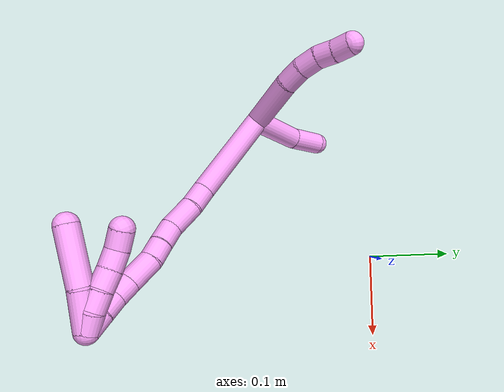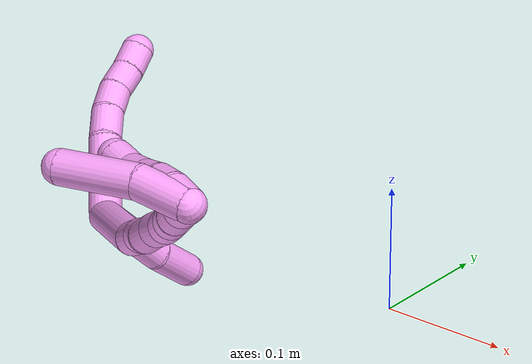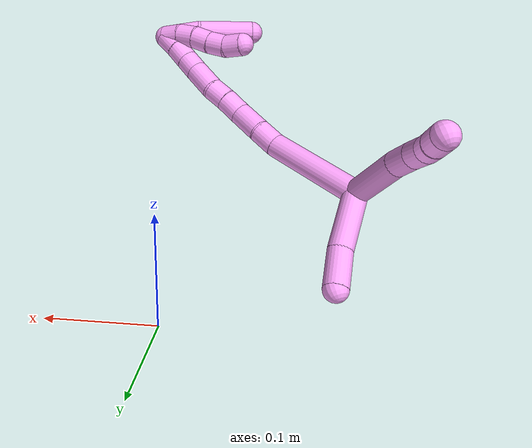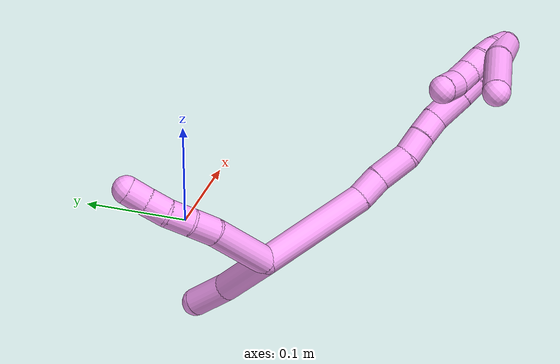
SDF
<sdf version="1.7">
 <world name="default">
  <model name="4">
   <static>0</static>
   <link name="4">
    <collision name="collision-cylinder-e_1_2_8">
     <pose>-0.026181 0.01748 -0.002011 -1.68532 -0.979069 1.07729</pose>
     <geometry><cylinder><radius>0.0125</radius><length>0.063088</length></cylinder></geometry>
     <surface>
      <friction><ode><mu>1.16</mu><mu2>1.16</mu2><slip1>0</slip1><slip2>0</slip2></ode></friction>
      <contact><ode><kp>1e+06</kp><kd>1</kd><max_vel>0</max_vel><min_depth>0.001</min_depth></ode></contact>
     </surface>
    </collision>
    <visual name="visual-cylinder-e_1_2_8">
     <pose>-0.026181 0.01748 -0.002011 -1.68532 -0.979069 1.07729</pose>
     <geometry><cylinder><radius>0.0125</radius><length>0.063088</length></cylinder></geometry>
     <material><ambient>1 0.65098 0.996078 1</ambient></material>
    </visual>
    <collision name="collision-cylinder-e_2_8_9">
     <pose>-0.062023 0.042205 -0.006603 -1.91309 -0.898423 1.1992</pose>
     <geometry><cylinder><radius>0.0125</radius><length>0.0247</length></cylinder></geometry>
     <surface>
      <friction><ode><mu>1.16</mu><mu2>1.16</mu2><slip1>0</slip1><slip2>0</slip2></ode></friction>
      <contact><ode><kp>1e+06</kp><kd>1</kd><max_vel>0</max_vel><min_depth>0.001</min_depth></ode></contact>
     </surface>
    </collision>
    <visual name="visual-cylinder-e_2_8_9">
     <pose>-0.062023 0.042205 -0.006603 -1.91309 -0.898423 1.1992</pose>
     <geometry><cylinder><radius>0.0125</radius><length>0.0247</length></cylinder></geometry>
     <material><ambient>1 0.65098 0.996078 1</ambient></material>
    </visual>
    <collision name="collision-cylinder-e_3_9_10">
     <pose>-0.078942 0.057204 -0.012435 -1.96778 -0.712116 1.01974</pose>
     <geometry><cylinder><radius>0.0125</radius><length>0.022212</length></cylinder></geometry>
     <surface>
      <friction><ode><mu>1.16</mu><mu2>1.16</mu2><slip1>0</slip1><slip2>0</slip2></ode></friction>
      <contact><ode><kp>1e+06</kp><kd>1</kd><max_vel>0</max_vel><min_depth>0.001</min_depth></ode></contact>
     </surface>
    </collision>
    <visual name="visual-cylinder-e_3_9_10">
     <pose>-0.078942 0.057204 -0.012435 -1.96778 -0.712116 1.01974</pose>
     <geometry><cylinder><radius>0.0125</radius><length>0.022212</length></cylinder></geometry>
     <material><ambient>1 0.65098 0.996078 1</ambient></material>
    </visual>
    <collision name="collision-cylinder-e_4_10_11">
     <pose>-0.090768 0.073499 -0.01817 -1.85382 -0.474482 0.623272</pose>
     <geometry><cylinder><radius>0.0125</radius><length>0.02</length></cylinder></geometry>
     <surface>
      <friction><ode><mu>1.16</mu><mu2>1.16</mu2><slip1>0</slip1><slip2>0</slip2></ode></friction>
      <contact><ode><kp>1e+06</kp><kd>1</kd><max_vel>0</max_vel><min_depth>0.001</min_depth></ode></contact>
     </surface>
    </collision>
    <visual name="visual-cylinder-e_4_10_11">
     <pose>-0.090768 0.073499 -0.01817 -1.85382 -0.474482 0.623272</pose>
     <geometry><cylinder><radius>0.0125</radius><length>0.02</length></cylinder></geometry>
     <material><ambient>1 0.65098 0.996078 1</ambient></material>
    </visual>
    <collision name="collision-cylinder-e_5_11_6">
     <pose>-0.100836 0.090176 -0.022544 -1.79909 -0.582234 0.721446</pose>
     <geometry><cylinder><radius>0.0125</radius><length>0.020001</length></cylinder></geometry>
     <surface>
      <friction><ode><mu>1.16</mu><mu2>1.16</mu2><slip1>0</slip1><slip2>0</slip2></ode></friction>
      <contact><ode><kp>1e+06</kp><kd>1</kd><max_vel>0</max_vel><min_depth>0.001</min_depth></ode></contact>
     </surface>
    </collision>
    <visual name="visual-cylinder-e_5_11_6">
     <pose>-0.100836 0.090176 -0.022544 -1.79909 -0.582234 0.721446</pose>
     <geometry><cylinder><radius>0.0125</radius><length>0.020001</length></cylinder></geometry>
     <material><ambient>1 0.65098 0.996078 1</ambient></material>
    </visual>
    <collision name="collision-cylinder-e_1_2_12">
     <pose>0.014461 0.008409 -0.02551 -2.82319 0.493892 -2.00734</pose>
     <geometry><cylinder><radius>0.0125</radius><length>0.061011</length></cylinder></geometry>
     <surface>
      <friction><ode><mu>1.16</mu><mu2>1.16</mu2><slip1>0</slip1><slip2>0</slip2></ode></friction>
      <contact><ode><kp>1e+06</kp><kd>1</kd><max_vel>0</max_vel><min_depth>0.001</min_depth></ode></contact>
     </surface>
    </collision>
    <visual name="visual-cylinder-e_1_2_12">
     <pose>0.014461 0.008409 -0.02551 -2.82319 0.493892 -2.00734</pose>
     <geometry><cylinder><radius>0.0125</radius><length>0.061011</length></cylinder></geometry>
     <material><ambient>1 0.65098 0.996078 1</ambient></material>
    </visual>
    <collision name="collision-cylinder-e_2_12_5">
     <pose>0.034865 0.023535 -0.068329 -2.7714 0.309765 -1.39011</pose>
     <geometry><cylinder><radius>0.0125</radius><length>0.038989</length></cylinder></geometry>
     <surface>
      <friction><ode><mu>1.16</mu><mu2>1.16</mu2><slip1>0</slip1><slip2>0</slip2></ode></friction>
      <contact><ode><kp>1e+06</kp><kd>1</kd><max_vel>0</max_vel><min_depth>0.001</min_depth></ode></contact>
     </surface>
    </collision>
    <visual name="visual-cylinder-e_2_12_5">
     <pose>0.034865 0.023535 -0.068329 -2.7714 0.309765 -1.39011</pose>
     <geometry><cylinder><radius>0.0125</radius><length>0.038989</length></cylinder></geometry>
     <material><ambient>1 0.65098 0.996078 1</ambient></material>
    </visual>
    <collision name="collision-cylinder-e_1_2_13">
     <pose>0.030687 6e-05 0.042796 -0.001407 0.622083 -0.000452</pose>
     <geometry><cylinder><radius>0.0125</radius><length>0.105322</length></cylinder></geometry>
     <surface>
      <friction><ode><mu>1.16</mu><mu2>1.16</mu2><slip1>0</slip1><slip2>0</slip2></ode></friction>
      <contact><ode><kp>1e+06</kp><kd>1</kd><max_vel>0</max_vel><min_depth>0.001</min_depth></ode></contact>
     </surface>
    </collision>
    <visual name="visual-cylinder-e_1_2_13">
     <pose>0.030687 6e-05 0.042796 -0.001407 0.622083 -0.000452</pose>
     <geometry><cylinder><radius>0.0125</radius><length>0.105322</length></cylinder></geometry>
     <material><ambient>1 0.65098 0.996078 1</ambient></material>
    </visual>
    <collision name="collision-cylinder-e_2_13_14">
     <pose>0.066612 0.002312 0.09652 -0.197953 0.439331 -0.044334</pose>
     <geometry><cylinder><radius>0.0125</radius><length>0.024632</length></cylinder></geometry>
     <surface>
      <friction><ode><mu>1.16</mu><mu2>1.16</mu2><slip1>0</slip1><slip2>0</slip2></ode></friction>
      <contact><ode><kp>1e+06</kp><kd>1</kd><max_vel>0</max_vel><min_depth>0.001</min_depth></ode></contact>
     </surface>
    </collision>
    <visual name="visual-cylinder-e_2_13_14">
     <pose>0.066612 0.002312 0.09652 -0.197953 0.439331 -0.044334</pose>
     <geometry><cylinder><radius>0.0125</radius><length>0.024632</length></cylinder></geometry>
     <material><ambient>1 0.65098 0.996078 1</ambient></material>
    </visual>
    <collision name="collision-cylinder-e_3_14_15">
     <pose>0.079089 0.004724 0.122389 -0.014667 0.45112 -0.003366</pose>
     <geometry><cylinder><radius>0.0125</radius><length>0.033207</length></cylinder></geometry>
     <surface>
      <friction><ode><mu>1.16</mu><mu2>1.16</mu2><slip1>0</slip1><slip2>0</slip2></ode></friction>
      <contact><ode><kp>1e+06</kp><kd>1</kd><max_vel>0</max_vel><min_depth>0.001</min_depth></ode></contact>
     </surface>
    </collision>
    <visual name="visual-cylinder-e_3_14_15">
     <pose>0.079089 0.004724 0.122389 -0.014667 0.45112 -0.003366</pose>
     <geometry><cylinder><radius>0.0125</radius><length>0.033207</length></cylinder></geometry>
     <material><ambient>1 0.65098 0.996078 1</ambient></material>
    </visual>
    <collision name="collision-cylinder-e_4_15_16">
     <pose>0.090585 0.008348 0.147484 -0.323586 0.378349 -0.062481</pose>
     <geometry><cylinder><radius>0.0125</radius><length>0.02305</length></cylinder></geometry>
     <surface>
      <friction><ode><mu>1.16</mu><mu2>1.16</mu2><slip1>0</slip1><slip2>0</slip2></ode></friction>
      <contact><ode><kp>1e+06</kp><kd>1</kd><max_vel>0</max_vel><min_depth>0.001</min_depth></ode></contact>
     </surface>
    </collision>
    <visual name="visual-cylinder-e_4_15_16">
     <pose>0.090585 0.008348 0.147484 -0.323586 0.378349 -0.062481</pose>
     <geometry><cylinder><radius>0.0125</radius><length>0.02305</length></cylinder></geometry>
     <material><ambient>1 0.65098 0.996078 1</ambient></material>
    </visual>
    <collision name="collision-cylinder-e_5_16_17">
     <pose>0.099386 0.014533 0.166425 -0.306294 0.458051 -0.071935</pose>
     <geometry><cylinder><radius>0.0125</radius><length>0.02055</length></cylinder></geometry>
     <surface>
      <friction><ode><mu>1.16</mu><mu2>1.16</mu2><slip1>0</slip1><slip2>0</slip2></ode></friction>
      <contact><ode><kp>1e+06</kp><kd>1</kd><max_vel>0</max_vel><min_depth>0.001</min_depth></ode></contact>
     </surface>
    </collision>
    <visual name="visual-cylinder-e_5_16_17">
     <pose>0.099386 0.014533 0.166425 -0.306294 0.458051 -0.071935</pose>
     <geometry><cylinder><radius>0.0125</radius><length>0.02055</length></cylinder></geometry>
     <material><ambient>1 0.65098 0.996078 1</ambient></material>
    </visual>
    <collision name="collision-cylinder-e_6_17_18">
     <pose>0.109538 0.018447 0.190054 -0.076386 0.360343 -0.01392</pose>
     <geometry><cylinder><radius>0.0125</radius><length>0.031814</length></cylinder></geometry>
     <surface>
      <friction><ode><mu>1.16</mu><mu2>1.16</mu2><slip1>0</slip1><slip2>0</slip2></ode></friction>
      <contact><ode><kp>1e+06</kp><kd>1</kd><max_vel>0</max_vel><min_depth>0.001</min_depth></ode></contact>
     </surface>
    </collision>
    <visual name="visual-cylinder-e_6_17_18">
     <pose>0.109538 0.018447 0.190054 -0.076386 0.360343 -0.01392</pose>
     <geometry><cylinder><radius>0.0125</radius><length>0.031814</length></cylinder></geometry>
     <material><ambient>1 0.65098 0.996078 1</ambient></material>
    </visual>
    <collision name="collision-cylinder-e_7_18_19">
     <pose>0.118419 0.020673 0.21429 -0.115507 0.333081 -0.019437</pose>
     <geometry><cylinder><radius>0.0125</radius><length>0.020012</length></cylinder></geometry>
     <surface>
      <friction><ode><mu>1.16</mu><mu2>1.16</mu2><slip1>0</slip1><slip2>0</slip2></ode></friction>
      <contact><ode><kp>1e+06</kp><kd>1</kd><max_vel>0</max_vel><min_depth>0.001</min_depth></ode></contact>
     </surface>
    </collision>
    <visual name="visual-cylinder-e_7_18_19">
     <pose>0.118419 0.020673 0.21429 -0.115507 0.333081 -0.019437</pose>
     <geometry><cylinder><radius>0.0125</radius><length>0.020012</length></cylinder></geometry>
     <material><ambient>1 0.65098 0.996078 1</ambient></material>
    </visual>
    <collision name="collision-cylinder-e_8_19_20">
     <pose>0.124666 0.024066 0.233088 -0.240154 0.298174 -0.036242</pose>
     <geometry><cylinder><radius>0.0125</radius><length>0.020261</length></cylinder></geometry>
     <surface>
      <friction><ode><mu>1.16</mu><mu2>1.16</mu2><slip1>0</slip1><slip2>0</slip2></ode></friction>
      <contact><ode><kp>1e+06</kp><kd>1</kd><max_vel>0</max_vel><min_depth>0.001</min_depth></ode></contact>
     </surface>
    </collision>
    <visual name="visual-cylinder-e_8_19_20">
     <pose>0.124666 0.024066 0.233088 -0.240154 0.298174 -0.036242</pose>
     <geometry><cylinder><radius>0.0125</radius><length>0.020261</length></cylinder></geometry>
     <material><ambient>1 0.65098 0.996078 1</ambient></material>
    </visual>
    <collision name="collision-cylinder-e_9_20_1">
     <pose>0.131534 0.028299 0.252136 -0.197544 0.376858 -0.037788</pose>
     <geometry><cylinder><radius>0.0125</radius><length>0.021152</length></cylinder></geometry>
     <surface>
      <friction><ode><mu>1.16</mu><mu2>1.16</mu2><slip1>0</slip1><slip2>0</slip2></ode></friction>
      <contact><ode><kp>1e+06</kp><kd>1</kd><max_vel>0</max_vel><min_depth>0.001</min_depth></ode></contact>
     </surface>
    </collision>
    <visual name="visual-cylinder-e_9_20_1">
     <pose>0.131534 0.028299 0.252136 -0.197544 0.376858 -0.037788</pose>
     <geometry><cylinder><radius>0.0125</radius><length>0.021152</length></cylinder></geometry>
     <material><ambient>1 0.65098 0.996078 1</ambient></material>
    </visual>
    <collision name="collision-cylinder-e_1_1_21">
     <pose>0.126326 0.029779 0.257658 3.03287 -1.14332 -2.97282</pose>
     <geometry><cylinder><radius>0.0125</radius><length>0.02</length></cylinder></geometry>
     <surface>
      <friction><ode><mu>1.16</mu><mu2>1.16</mu2><slip1>0</slip1><slip2>0</slip2></ode></friction>
      <contact><ode><kp>1e+06</kp><kd>1</kd><max_vel>0</max_vel><min_depth>0.001</min_depth></ode></contact>
     </surface>
    </collision>
    <visual name="visual-cylinder-e_1_1_21">
     <pose>0.126326 0.029779 0.257658 3.03287 -1.14332 -2.97282</pose>
     <geometry><cylinder><radius>0.0125</radius><length>0.02</length></cylinder></geometry>
     <material><ambient>1 0.65098 0.996078 1</ambient></material>
    </visual>
    <collision name="collision-cylinder-e_2_21_22">
     <pose>0.109389 0.027914 0.247489 2.91167 -0.900591 -2.67266</pose>
     <geometry><cylinder><radius>0.0125</radius><length>0.02</length></cylinder></geometry>
     <surface>
      <friction><ode><mu>1.16</mu><mu2>1.16</mu2><slip1>0</slip1><slip2>0</slip2></ode></friction>
      <contact><ode><kp>1e+06</kp><kd>1</kd><max_vel>0</max_vel><min_depth>0.001</min_depth></ode></contact>
     </surface>
    </collision>
    <visual name="visual-cylinder-e_2_21_22">
     <pose>0.109389 0.027914 0.247489 2.91167 -0.900591 -2.67266</pose>
     <geometry><cylinder><radius>0.0125</radius><length>0.02</length></cylinder></geometry>
     <material><ambient>1 0.65098 0.996078 1</ambient></material>
    </visual>
    <collision name="collision-cylinder-e_3_22_23">
     <pose>0.094767 0.024395 0.234402 2.85116 -0.74574 -2.42604</pose>
     <geometry><cylinder><radius>0.0125</radius><length>0.02</length></cylinder></geometry>
     <surface>
      <friction><ode><mu>1.16</mu><mu2>1.16</mu2><slip1>0</slip1><slip2>0</slip2></ode></friction>
      <contact><ode><kp>1e+06</kp><kd>1</kd><max_vel>0</max_vel><min_depth>0.001</min_depth></ode></contact>
     </surface>
    </collision>
    <visual name="visual-cylinder-e_3_22_23">
     <pose>0.094767 0.024395 0.234402 2.85116 -0.74574 -2.42604</pose>
     <geometry><cylinder><radius>0.0125</radius><length>0.02</length></cylinder></geometry>
     <material><ambient>1 0.65098 0.996078 1</ambient></material>
    </visual>
    <collision name="collision-cylinder-e_4_23_24">
     <pose>0.080447 0.02031 0.221096 2.83545 -0.853443 -2.48731</pose>
     <geometry><cylinder><radius>0.0125</radius><length>0.02</length></cylinder></geometry>
     <surface>
      <friction><ode><mu>1.16</mu><mu2>1.16</mu2><slip1>0</slip1><slip2>0</slip2></ode></friction>
      <contact><ode><kp>1e+06</kp><kd>1</kd><max_vel>0</max_vel><min_depth>0.001</min_depth></ode></contact>
     </surface>
    </collision>
    <visual name="visual-cylinder-e_4_23_24">
     <pose>0.080447 0.02031 0.221096 2.83545 -0.853443 -2.48731</pose>
     <geometry><cylinder><radius>0.0125</radius><length>0.02</length></cylinder></geometry>
     <material><ambient>1 0.65098 0.996078 1</ambient></material>
    </visual>
    <collision name="collision-cylinder-e_5_24_4">
     <pose>0.063772 0.017426 0.210869 2.91735 -1.15273 -2.79855</pose>
     <geometry><cylinder><radius>0.0125</radius><length>0.02</length></cylinder></geometry>
     <surface>
      <friction><ode><mu>1.16</mu><mu2>1.16</mu2><slip1>0</slip1><slip2>0</slip2></ode></friction>
      <contact><ode><kp>1e+06</kp><kd>1</kd><max_vel>0</max_vel><min_depth>0.001</min_depth></ode></contact>
     </surface>
    </collision>
    <visual name="visual-cylinder-e_5_24_4">
     <pose>0.063772 0.017426 0.210869 2.91735 -1.15273 -2.79855</pose>
     <geometry><cylinder><radius>0.0125</radius><length>0.02</length></cylinder></geometry>
     <material><ambient>1 0.65098 0.996078 1</ambient></material>
    </visual>
    <collision name="collision-cylinder-e_1_1_25">
     <pose>0.117249 0.022468 0.257999 2.02407 -1.12741 -1.58176</pose>
     <geometry><cylinder><radius>0.0125</radius><length>0.040248</length></cylinder></geometry>
     <surface>
      <friction><ode><mu>1.16</mu><mu2>1.16</mu2><slip1>0</slip1><slip2>0</slip2></ode></friction>
      <contact><ode><kp>1e+06</kp><kd>1</kd><max_vel>0</max_vel><min_depth>0.001</min_depth></ode></contact>
     </surface>
    </collision>
    <visual name="visual-cylinder-e_1_1_25">
     <pose>0.117249 0.022468 0.257999 2.02407 -1.12741 -1.58176</pose>
     <geometry><cylinder><radius>0.0125</radius><length>0.040248</length></cylinder></geometry>
     <material><ambient>1 0.65098 0.996078 1</ambient></material>
    </visual>
    <collision name="collision-cylinder-e_2_25_3">
     <pose>0.0755 -0.002407 0.247573 1.94116 -0.909087 -1.24006</pose>
     <geometry><cylinder><radius>0.0125</radius><length>0.059752</length></cylinder></geometry>
     <surface>
      <friction><ode><mu>1.16</mu><mu2>1.16</mu2><slip1>0</slip1><slip2>0</slip2></ode></friction>
      <contact><ode><kp>1e+06</kp><kd>1</kd><max_vel>0</max_vel><min_depth>0.001</min_depth></ode></contact>
     </surface>
    </collision>
    <visual name="visual-cylinder-e_2_25_3">
     <pose>0.0755 -0.002407 0.247573 1.94116 -0.909087 -1.24006</pose>
     <geometry><cylinder><radius>0.0125</radius><length>0.059752</length></cylinder></geometry>
     <material><ambient>1 0.65098 0.996078 1</ambient></material>
    </visual>
    <collision name="collision-sphere-3">
     <pose>0.051929 -0.01952 0.240929 0 -0 0</pose>
     <geometry><sphere><radius>0.0125</radius></sphere></geometry>
     <surface>
      <friction><ode><mu>1.16</mu><mu2>1.16</mu2><slip1>0</slip1><slip2>0</slip2></ode></friction>
      <contact><ode><kp>1e+06</kp><kd>1</kd><max_vel>0</max_vel><min_depth>0.001</min_depth></ode></contact>
     </surface>
    </collision>
    <visual name="visual-sphere-3">
     <pose>0.051929 -0.01952 0.240929 0 -0 0</pose>
     <geometry><sphere><radius>0.0125</radius></sphere></geometry>
     <material><ambient>1 0.65098 0.996078 1</ambient></material>
    </visual>
    <collision name="collision-sphere-25">
     <pose>0.099071 0.014706 0.254218 0 -0 0</pose>
     <geometry><sphere><radius>0.0125</radius></sphere></geometry>
     <surface>
      <friction><ode><mu>1.16</mu><mu2>1.16</mu2><slip1>0</slip1><slip2>0</slip2></ode></friction>
      <contact><ode><kp>1e+06</kp><kd>1</kd><max_vel>0</max_vel><min_depth>0.001</min_depth></ode></contact>
     </surface>
    </collision>
    <visual name="visual-sphere-25">
     <pose>0.099071 0.014706 0.254218 0 -0 0</pose>
     <geometry><sphere><radius>0.0125</radius></sphere></geometry>
     <material><ambient>1 0.65098 0.996078 1</ambient></material>
    </visual>
    <collision name="collision-sphere-4">
     <pose>0.054634 0.016523 0.206911 0 -0 0</pose>
     <geometry><sphere><radius>0.0125</radius></sphere></geometry>
     <surface>
      <friction><ode><mu>1.16</mu><mu2>1.16</mu2><slip1>0</slip1><slip2>0</slip2></ode></friction>
      <contact><ode><kp>1e+06</kp><kd>1</kd><max_vel>0</max_vel><min_depth>0.001</min_depth></ode></contact>
     </surface>
    </collision>
    <visual name="visual-sphere-4">
     <pose>0.054634 0.016523 0.206911 0 -0 0</pose>
     <geometry><sphere><radius>0.0125</radius></sphere></geometry>
     <material><ambient>1 0.65098 0.996078 1</ambient></material>
    </visual>
    <collision name="collision-sphere-24">
     <pose>0.072911 0.018329 0.214828 0 -0 0</pose>
     <geometry><sphere><radius>0.0125</radius></sphere></geometry>
     <surface>
      <friction><ode><mu>1.16</mu><mu2>1.16</mu2><slip1>0</slip1><slip2>0</slip2></ode></friction>
      <contact><ode><kp>1e+06</kp><kd>1</kd><max_vel>0</max_vel><min_depth>0.001</min_depth></ode></contact>
     </surface>
    </collision>
    <visual name="visual-sphere-24">
     <pose>0.072911 0.018329 0.214828 0 -0 0</pose>
     <geometry><sphere><radius>0.0125</radius></sphere></geometry>
     <material><ambient>1 0.65098 0.996078 1</ambient></material>
    </visual>
    <collision name="collision-sphere-23">
     <pose>0.087982 0.022291 0.227364 0 -0 0</pose>
     <geometry><sphere><radius>0.0125</radius></sphere></geometry>
     <surface>
      <friction><ode><mu>1.16</mu><mu2>1.16</mu2><slip1>0</slip1><slip2>0</slip2></ode></friction>
      <contact><ode><kp>1e+06</kp><kd>1</kd><max_vel>0</max_vel><min_depth>0.001</min_depth></ode></contact>
     </surface>
    </collision>
    <visual name="visual-sphere-23">
     <pose>0.087982 0.022291 0.227364 0 -0 0</pose>
     <geometry><sphere><radius>0.0125</radius></sphere></geometry>
     <material><ambient>1 0.65098 0.996078 1</ambient></material>
    </visual>
    <collision name="collision-sphere-22">
     <pose>0.101552 0.026498 0.241441 0 -0 0</pose>
     <geometry><sphere><radius>0.0125</radius></sphere></geometry>
     <surface>
      <friction><ode><mu>1.16</mu><mu2>1.16</mu2><slip1>0</slip1><slip2>0</slip2></ode></friction>
      <contact><ode><kp>1e+06</kp><kd>1</kd><max_vel>0</max_vel><min_depth>0.001</min_depth></ode></contact>
     </surface>
    </collision>
    <visual name="visual-sphere-22">
     <pose>0.101552 0.026498 0.241441 0 -0 0</pose>
     <geometry><sphere><radius>0.0125</radius></sphere></geometry>
     <material><ambient>1 0.65098 0.996078 1</ambient></material>
    </visual>
    <collision name="collision-sphere-21">
     <pose>0.117226 0.02933 0.253537 0 -0 0</pose>
     <geometry><sphere><radius>0.0125</radius></sphere></geometry>
     <surface>
      <friction><ode><mu>1.16</mu><mu2>1.16</mu2><slip1>0</slip1><slip2>0</slip2></ode></friction>
      <contact><ode><kp>1e+06</kp><kd>1</kd><max_vel>0</max_vel><min_depth>0.001</min_depth></ode></contact>
     </surface>
    </collision>
    <visual name="visual-sphere-21">
     <pose>0.117226 0.02933 0.253537 0 -0 0</pose>
     <geometry><sphere><radius>0.0125</radius></sphere></geometry>
     <material><ambient>1 0.65098 0.996078 1</ambient></material>
    </visual>
    <collision name="collision-sphere-1">
     <pose>0.135427 0.030229 0.261779 0 -0 0</pose>
     <geometry><sphere><radius>0.0125</radius></sphere></geometry>
     <surface>
      <friction><ode><mu>1.16</mu><mu2>1.16</mu2><slip1>0</slip1><slip2>0</slip2></ode></friction>
      <contact><ode><kp>1e+06</kp><kd>1</kd><max_vel>0</max_vel><min_depth>0.001</min_depth></ode></contact>
     </surface>
    </collision>
    <visual name="visual-sphere-1">
     <pose>0.135427 0.030229 0.261779 0 -0 0</pose>
     <geometry><sphere><radius>0.0125</radius></sphere></geometry>
     <material><ambient>1 0.65098 0.996078 1</ambient></material>
    </visual>
    <collision name="collision-sphere-6">
     <pose>-0.106335 0.098312 -0.024435 0 -0 0</pose>
     <geometry><sphere><radius>0.0125</radius></sphere></geometry>
     <surface>
      <friction><ode><mu>1.16</mu><mu2>1.16</mu2><slip1>0</slip1><slip2>0</slip2></ode></friction>
      <contact><ode><kp>1e+06</kp><kd>1</kd><max_vel>0</max_vel><min_depth>0.001</min_depth></ode></contact>
     </surface>
    </collision>
    <visual name="visual-sphere-6">
     <pose>-0.106335 0.098312 -0.024435 0 -0 0</pose>
     <geometry><sphere><radius>0.0125</radius></sphere></geometry>
     <material><ambient>1 0.65098 0.996078 1</ambient></material>
    </visual>
    <collision name="collision-sphere-11">
     <pose>-0.095337 0.08204 -0.020654 0 -0 0</pose>
     <geometry><sphere><radius>0.0125</radius></sphere></geometry>
     <surface>
      <friction><ode><mu>1.16</mu><mu2>1.16</mu2><slip1>0</slip1><slip2>0</slip2></ode></friction>
      <contact><ode><kp>1e+06</kp><kd>1</kd><max_vel>0</max_vel><min_depth>0.001</min_depth></ode></contact>
     </surface>
    </collision>
    <visual name="visual-sphere-11">
     <pose>-0.095337 0.08204 -0.020654 0 -0 0</pose>
     <geometry><sphere><radius>0.0125</radius></sphere></geometry>
     <material><ambient>1 0.65098 0.996078 1</ambient></material>
    </visual>
    <collision name="collision-sphere-10">
     <pose>-0.086199 0.064957 -0.015686 0 -0 0</pose>
     <geometry><sphere><radius>0.0125</radius></sphere></geometry>
     <surface>
      <friction><ode><mu>1.16</mu><mu2>1.16</mu2><slip1>0</slip1><slip2>0</slip2></ode></friction>
      <contact><ode><kp>1e+06</kp><kd>1</kd><max_vel>0</max_vel><min_depth>0.001</min_depth></ode></contact>
     </surface>
    </collision>
    <visual name="visual-sphere-10">
     <pose>-0.086199 0.064957 -0.015686 0 -0 0</pose>
     <geometry><sphere><radius>0.0125</radius></sphere></geometry>
     <material><ambient>1 0.65098 0.996078 1</ambient></material>
    </visual>
    <collision name="collision-sphere-9">
     <pose>-0.071685 0.049451 -0.009185 0 -0 0</pose>
     <geometry><sphere><radius>0.0125</radius></sphere></geometry>
     <surface>
      <friction><ode><mu>1.16</mu><mu2>1.16</mu2><slip1>0</slip1><slip2>0</slip2></ode></friction>
      <contact><ode><kp>1e+06</kp><kd>1</kd><max_vel>0</max_vel><min_depth>0.001</min_depth></ode></contact>
     </surface>
    </collision>
    <visual name="visual-sphere-9">
     <pose>-0.071685 0.049451 -0.009185 0 -0 0</pose>
     <geometry><sphere><radius>0.0125</radius></sphere></geometry>
     <material><ambient>1 0.65098 0.996078 1</ambient></material>
    </visual>
    <collision name="collision-sphere-2">
     <geometry><sphere><radius>0.0125</radius></sphere></geometry>
     <surface>
      <friction><ode><mu>1.16</mu><mu2>1.16</mu2><slip1>0</slip1><slip2>0</slip2></ode></friction>
      <contact><ode><kp>1e+06</kp><kd>1</kd><max_vel>0</max_vel><min_depth>0.001</min_depth></ode></contact>
     </surface>
    </collision>
    <visual name="visual-sphere-2">
     <geometry><sphere><radius>0.0125</radius></sphere></geometry>
     <material><ambient>1 0.65098 0.996078 1</ambient></material>
    </visual>
    <collision name="collision-sphere-19">
     <pose>0.12169 0.021763 0.223683 0 -0 0</pose>
     <geometry><sphere><radius>0.0125</radius></sphere></geometry>
     <surface>
      <friction><ode><mu>1.16</mu><mu2>1.16</mu2><slip1>0</slip1><slip2>0</slip2></ode></friction>
      <contact><ode><kp>1e+06</kp><kd>1</kd><max_vel>0</max_vel><min_depth>0.001</min_depth></ode></contact>
     </surface>
    </collision>
    <visual name="visual-sphere-19">
     <pose>0.12169 0.021763 0.223683 0 -0 0</pose>
     <geometry><sphere><radius>0.0125</radius></sphere></geometry>
     <material><ambient>1 0.65098 0.996078 1</ambient></material>
    </visual>
    <collision name="collision-sphere-8">
     <pose>-0.052361 0.03496 -0.004021 0 -0 0</pose>
     <geometry><sphere><radius>0.0125</radius></sphere></geometry>
     <surface>
      <friction><ode><mu>1.16</mu><mu2>1.16</mu2><slip1>0</slip1><slip2>0</slip2></ode></friction>
      <contact><ode><kp>1e+06</kp><kd>1</kd><max_vel>0</max_vel><min_depth>0.001</min_depth></ode></contact>
     </surface>
    </collision>
    <visual name="visual-sphere-8">
     <pose>-0.052361 0.03496 -0.004021 0 -0 0</pose>
     <geometry><sphere><radius>0.0125</radius></sphere></geometry>
     <material><ambient>1 0.65098 0.996078 1</ambient></material>
    </visual>
    <collision name="collision-sphere-12">
     <pose>0.028923 0.016817 -0.05102 0 -0 0</pose>
     <geometry><sphere><radius>0.0125</radius></sphere></geometry>
     <surface>
      <friction><ode><mu>1.16</mu><mu2>1.16</mu2><slip1>0</slip1><slip2>0</slip2></ode></friction>
      <contact><ode><kp>1e+06</kp><kd>1</kd><max_vel>0</max_vel><min_depth>0.001</min_depth></ode></contact>
     </surface>
    </collision>
    <visual name="visual-sphere-12">
     <pose>0.028923 0.016817 -0.05102 0 -0 0</pose>
     <geometry><sphere><radius>0.0125</radius></sphere></geometry>
     <material><ambient>1 0.65098 0.996078 1</ambient></material>
    </visual>
    <collision name="collision-sphere-5">
     <pose>0.040808 0.030252 -0.085637 0 -0 0</pose>
     <geometry><sphere><radius>0.0125</radius></sphere></geometry>
     <surface>
      <friction><ode><mu>1.16</mu><mu2>1.16</mu2><slip1>0</slip1><slip2>0</slip2></ode></friction>
      <contact><ode><kp>1e+06</kp><kd>1</kd><max_vel>0</max_vel><min_depth>0.001</min_depth></ode></contact>
     </surface>
    </collision>
    <visual name="visual-sphere-5">
     <pose>0.040808 0.030252 -0.085637 0 -0 0</pose>
     <geometry><sphere><radius>0.0125</radius></sphere></geometry>
     <material><ambient>1 0.65098 0.996078 1</ambient></material>
    </visual>
    <collision name="collision-sphere-13">
     <pose>0.061374 0.00012 0.085591 0 -0 0</pose>
     <geometry><sphere><radius>0.0125</radius></sphere></geometry>
     <surface>
      <friction><ode><mu>1.16</mu><mu2>1.16</mu2><slip1>0</slip1><slip2>0</slip2></ode></friction>
      <contact><ode><kp>1e+06</kp><kd>1</kd><max_vel>0</max_vel><min_depth>0.001</min_depth></ode></contact>
     </surface>
    </collision>
    <visual name="visual-sphere-13">
     <pose>0.061374 0.00012 0.085591 0 -0 0</pose>
     <geometry><sphere><radius>0.0125</radius></sphere></geometry>
     <material><ambient>1 0.65098 0.996078 1</ambient></material>
    </visual>
    <collision name="collision-sphere-14">
     <pose>0.071851 0.004505 0.107449 0 -0 0</pose>
     <geometry><sphere><radius>0.0125</radius></sphere></geometry>
     <surface>
      <friction><ode><mu>1.16</mu><mu2>1.16</mu2><slip1>0</slip1><slip2>0</slip2></ode></friction>
      <contact><ode><kp>1e+06</kp><kd>1</kd><max_vel>0</max_vel><min_depth>0.001</min_depth></ode></contact>
     </surface>
    </collision>
    <visual name="visual-sphere-14">
     <pose>0.071851 0.004505 0.107449 0 -0 0</pose>
     <geometry><sphere><radius>0.0125</radius></sphere></geometry>
     <material><ambient>1 0.65098 0.996078 1</ambient></material>
    </visual>
    <collision name="collision-sphere-15">
     <pose>0.086328 0.004943 0.13733 0 -0 0</pose>
     <geometry><sphere><radius>0.0125</radius></sphere></geometry>
     <surface>
      <friction><ode><mu>1.16</mu><mu2>1.16</mu2><slip1>0</slip1><slip2>0</slip2></ode></friction>
      <contact><ode><kp>1e+06</kp><kd>1</kd><max_vel>0</max_vel><min_depth>0.001</min_depth></ode></contact>
     </surface>
    </collision>
    <visual name="visual-sphere-15">
     <pose>0.086328 0.004943 0.13733 0 -0 0</pose>
     <geometry><sphere><radius>0.0125</radius></sphere></geometry>
     <material><ambient>1 0.65098 0.996078 1</ambient></material>
    </visual>
    <collision name="collision-sphere-16">
     <pose>0.094843 0.011754 0.157639 0 -0 0</pose>
     <geometry><sphere><radius>0.0125</radius></sphere></geometry>
     <surface>
      <friction><ode><mu>1.16</mu><mu2>1.16</mu2><slip1>0</slip1><slip2>0</slip2></ode></friction>
      <contact><ode><kp>1e+06</kp><kd>1</kd><max_vel>0</max_vel><min_depth>0.001</min_depth></ode></contact>
     </surface>
    </collision>
    <visual name="visual-sphere-16">
     <pose>0.094843 0.011754 0.157639 0 -0 0</pose>
     <geometry><sphere><radius>0.0125</radius></sphere></geometry>
     <material><ambient>1 0.65098 0.996078 1</ambient></material>
    </visual>
    <collision name="collision-sphere-17">
     <pose>0.10393 0.017311 0.175212 0 -0 0</pose>
     <geometry><sphere><radius>0.0125</radius></sphere></geometry>
     <surface>
      <friction><ode><mu>1.16</mu><mu2>1.16</mu2><slip1>0</slip1><slip2>0</slip2></ode></friction>
      <contact><ode><kp>1e+06</kp><kd>1</kd><max_vel>0</max_vel><min_depth>0.001</min_depth></ode></contact>
     </surface>
    </collision>
    <visual name="visual-sphere-17">
     <pose>0.10393 0.017311 0.175212 0 -0 0</pose>
     <geometry><sphere><radius>0.0125</radius></sphere></geometry>
     <material><ambient>1 0.65098 0.996078 1</ambient></material>
    </visual>
    <collision name="collision-sphere-18">
     <pose>0.115147 0.019583 0.204896 0 -0 0</pose>
     <geometry><sphere><radius>0.0125</radius></sphere></geometry>
     <surface>
      <friction><ode><mu>1.16</mu><mu2>1.16</mu2><slip1>0</slip1><slip2>0</slip2></ode></friction>
      <contact><ode><kp>1e+06</kp><kd>1</kd><max_vel>0</max_vel><min_depth>0.001</min_depth></ode></contact>
     </surface>
    </collision>
    <visual name="visual-sphere-18">
     <pose>0.115147 0.019583 0.204896 0 -0 0</pose>
     <geometry><sphere><radius>0.0125</radius></sphere></geometry>
     <material><ambient>1 0.65098 0.996078 1</ambient></material>
    </visual>
    <collision name="collision-sphere-20">
     <pose>0.127642 0.026369 0.242494 0 -0 0</pose>
     <geometry><sphere><radius>0.0125</radius></sphere></geometry>
     <surface>
      <friction><ode><mu>1.16</mu><mu2>1.16</mu2><slip1>0</slip1><slip2>0</slip2></ode></friction>
      <contact><ode><kp>1e+06</kp><kd>1</kd><max_vel>0</max_vel><min_depth>0.001</min_depth></ode></contact>
     </surface>
    </collision>
    <visual name="visual-sphere-20">
     <pose>0.127642 0.026369 0.242494 0 -0 0</pose>
     <geometry><sphere><radius>0.0125</radius></sphere></geometry>
     <material><ambient>1 0.65098 0.996078 1</ambient></material>
    </visual>
    <inertial>
     <pose>0.046652 0.018767 0.108221 0 -0 0</pose>
     <mass>0.75</mass>
     <inertia><ixx>7e-05</ixx><ixy>0</ixy><ixz>0</ixz><iyy>0.000155</iyy><iyz>0</iyz><izz>-3.4e-05</izz></inertia>
    </inertial>
   </link>
   <pose>-0.164355 -0.135467 0.078374 0.601921 0.546728 -0.138365</pose>
  </model>
 </world>
</sdf>
